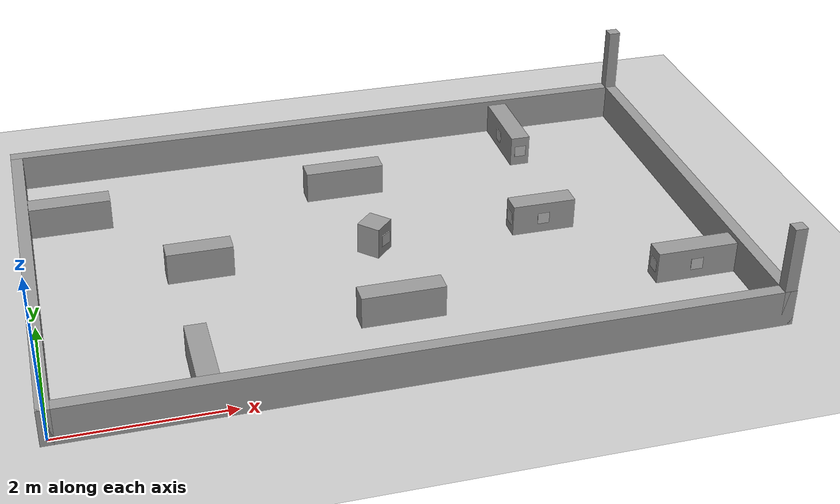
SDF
<sdf version="1.6">
 <world name="default">
  <model name="ground_plane">
   <static>1</static>
   <link name="link">
    <collision name="collision">
     <geometry><plane><normal>0 0 1</normal><size>100 100</size></plane></geometry>
     <surface><friction><ode><mu>100</mu><mu2>50</mu2></ode></friction></surface>
    </collision>
    <visual name="visual">
     <cast_shadows>0</cast_shadows>
     <geometry><plane><normal>0 0 1</normal><size>100 100</size></plane></geometry>
     <material>
      <script><uri>file://media/materials/scripts/gazebo.material</uri><name>Gazebo/Grey</name></script>
     </material>
    </visual>
   </link>
  </model>
  <model name="2020map_originsize">
   <pose>4.125 2.61211 0 0 -0 0</pose>
   <link name="Wall_0">
    <collision name="Wall_0_Collision">
     <geometry><box><size>5.4 0.15 0.46</size></box></geometry>
     <pose>0 0 0.23 0 -0 0</pose>
    </collision>
    <visual name="Wall_0_Visual">
     <pose>0 0 0.23 0 -0 0</pose>
     <geometry><box><size>5.4 0.15 0.46</size></box></geometry>
     <material>
      <script><uri>file://media/materials/scripts/gazebo.material</uri><name>Gazebo/Grey</name></script>
      <ambient>1 1 1 1</ambient>
     </material>
    </visual>
    <pose>-4.125 0 0 0 0 -1.5708</pose>
   </link>
   <link name="Wall_1">
    <collision name="Wall_1_Collision">
     <geometry><box><size>8.4 0.15 0.46</size></box></geometry>
     <pose>0 0 0.23 0 -0 0</pose>
    </collision>
    <visual name="Wall_1_Visual">
     <pose>0 0 0.23 0 -0 0</pose>
     <geometry><box><size>8.4 0.15 0.46</size></box></geometry>
     <material>
      <script><uri>file://media/materials/scripts/gazebo.material</uri><name>Gazebo/Grey</name></script>
      <ambient>1 1 1 1</ambient>
     </material>
    </visual>
    <pose>0 -2.625 0 0 -0 0</pose>
   </link>
   <link name="Wall_11">
    <collision name="Wall_11_Collision">
     <geometry><box><size>1 0.25 0.4</size></box></geometry>
     <pose>0 0 0.2 0 -0 0</pose>
    </collision>
    <visual name="Wall_11_Visual">
     <pose>0 0 0.2 0 -0 0</pose>
     <geometry><box><size>1 0.25 0.4</size></box></geometry>
     <material>
      <script><uri>file://media/materials/scripts/gazebo.material</uri><name>Gazebo/Grey</name></script>
      <ambient>1 1 1 1</ambient>
     </material>
    </visual>
    <pose>-2.425 -2.05 0 0 -0 1.5708</pose>
   </link>
   <link name="Wall_13">
    <collision name="Wall_13_Collision">
     <geometry><box><size>1 0.25 0.4</size></box></geometry>
     <pose>0 0 0.2 0 -0 0</pose>
    </collision>
    <visual name="Wall_13_Visual">
     <pose>0 0 0.2 0 -0 0</pose>
     <geometry><box><size>1 0.25 0.4</size></box></geometry>
     <material>
      <script><uri>file://media/materials/scripts/gazebo.material</uri><name>Gazebo/Grey</name></script>
      <ambient>1 1 1 1</ambient>
     </material>
    </visual>
    <pose>-0.05 1.425 0 0 -0 0</pose>
   </link>
   <link name="Wall_15">
    <collision name="Wall_15_Collision">
     <geometry><box><size>1 0.25 0.4</size></box></geometry>
     <pose>0 0 0.2 0 -0 0</pose>
    </collision>
    <visual name="Wall_15_Visual">
     <pose>0 0 0.2 0 -0 0</pose>
     <geometry><box><size>1 0.25 0.4</size></box></geometry>
     <material>
      <script><uri>file://media/materials/scripts/gazebo.material</uri><name>Gazebo/Grey</name></script>
      <ambient>1 1 1 1</ambient>
     </material>
    </visual>
    <pose>-0.05 -1.425 0 0 -0 0</pose>
   </link>
   <link name="Wall_17">
    <collision name="Wall_17_Collision">
     <geometry><box><size>0.8 0.25 0.4</size></box></geometry>
     <pose>0 0 0.2 0 -0 0</pose>
    </collision>
    <visual name="Wall_17_Visual">
     <pose>0 0 0.2 0 -0 0</pose>
     <geometry><box><size>0.8 0.25 0.4</size></box></geometry>
     <material>
      <script><uri>file://media/materials/scripts/gazebo.material</uri><name>Gazebo/Grey</name></script>
      <ambient>1 1 1 1</ambient>
     </material>
    </visual>
    <pose>-2.15 0 0 0 -0 0</pose>
   </link>
   <link name="Wall_19">
    <collision name="Wall_19_Collision">
     <geometry><box><size>0.8 0.25 0.4</size></box></geometry>
     <pose>0 0 0.2 0 -0 0</pose>
    </collision>
    <visual name="Wall_19_Visual">
     <pose>0 0 0.2 0 -0 0</pose>
     <geometry><box><size>0.8 0.25 0.4</size></box></geometry>
     <material>
      <script><uri>file://media/materials/scripts/gazebo.material</uri><name>Gazebo/Grey</name></script>
      <ambient>1 1 1 1</ambient>
     </material>
    </visual>
    <pose>2.15 0 0 0 -0 0</pose>
   </link>
   <link name="Wall_2">
    <collision name="Wall_2_Collision">
     <geometry><box><size>5.4 0.15 0.46</size></box></geometry>
     <pose>0 0 0.23 0 -0 0</pose>
    </collision>
    <visual name="Wall_2_Visual">
     <pose>0 0 0.23 0 -0 0</pose>
     <geometry><box><size>5.4 0.15 0.46</size></box></geometry>
     <material>
      <script><uri>file://media/materials/scripts/gazebo.material</uri><name>Gazebo/Grey</name></script>
      <ambient>1 1 1 1</ambient>
     </material>
    </visual>
    <pose>4.125 0 0 0 -0 1.5708</pose>
   </link>
   <link name="Wall_21">
    <collision name="Wall_21_Collision">
     <geometry><box><size>0.303364 0.3 0.4</size></box></geometry>
     <pose>0 0 0.2 0 -0 0</pose>
    </collision>
    <visual name="Wall_21_Visual">
     <pose>0 0 0.2 0 -0 0</pose>
     <geometry><box><size>0.303364 0.3 0.4</size></box></geometry>
     <material>
      <script><uri>file://media/materials/scripts/gazebo.material</uri><name>Gazebo/Grey</name></script>
      <ambient>1 1 1 1</ambient>
     </material>
    </visual>
    <pose>0.001 0.001 0 0 -0 0.785398</pose>
   </link>
   <link name="Wall_3">
    <collision name="Wall_3_Collision">
     <geometry><box><size>8.4 0.15 0.46</size></box></geometry>
     <pose>0 0 0.23 0 -0 0</pose>
    </collision>
    <visual name="Wall_3_Visual">
     <pose>0 0 0.23 0 -0 0</pose>
     <geometry><box><size>8.4 0.15 0.46</size></box></geometry>
     <material>
      <script><uri>file://media/materials/scripts/gazebo.material</uri><name>Gazebo/Grey</name></script>
      <ambient>1 1 1 1</ambient>
     </material>
    </visual>
    <pose>0 2.625 0 0 -0 3.14159</pose>
   </link>
   <link name="Wall_5">
    <collision name="Wall_5_Collision">
     <geometry><box><size>1 0.25 0.4</size></box></geometry>
     <pose>0 0 0.2 0 -0 0</pose>
    </collision>
    <visual name="Wall_5_Visual">
     <pose>0 0 0.2 0 -0 0</pose>
     <geometry><box><size>1 0.25 0.4</size></box></geometry>
     <material>
      <script><uri>file://media/materials/scripts/gazebo.material</uri><name>Gazebo/Grey</name></script>
      <ambient>1 1 1 1</ambient>
     </material>
    </visual>
    <pose>-3.55 1.425 0 0 -0 0</pose>
   </link>
   <link name="Wall_7">
    <collision name="Wall_7_Collision">
     <geometry><box><size>1 0.25 0.4</size></box></geometry>
     <pose>0 0 0.2 0 -0 0</pose>
    </collision>
    <visual name="Wall_7_Visual">
     <pose>0 0 0.2 0 -0 0</pose>
     <geometry><box><size>1 0.25 0.4</size></box></geometry>
     <material>
      <script><uri>file://media/materials/scripts/gazebo.material</uri><name>Gazebo/Grey</name></script>
      <ambient>1 1 1 1</ambient>
     </material>
    </visual>
    <pose>2.425 2.05 0 0 0 -1.5708</pose>
   </link>
   <link name="Wall_9">
    <collision name="Wall_9_Collision">
     <geometry><box><size>1 0.25 0.4</size></box></geometry>
     <pose>0 0 0.2 0 -0 0</pose>
    </collision>
    <visual name="Wall_9_Visual">
     <pose>0 0 0.2 0 -0 0</pose>
     <geometry><box><size>1 0.25 0.4</size></box></geometry>
     <material>
      <script><uri>file://media/materials/scripts/gazebo.material</uri><name>Gazebo/Grey</name></script>
      <ambient>1 1 1 1</ambient>
     </material>
    </visual>
    <pose>3.55 -1.425 0 0 -0 3.14159</pose>
   </link>
   <static>1</static>
  </model>
  <model name="visualtag_08">
   <link name="main">
    <visual name="main_Visual">
     <geometry><box><size>0.15 0.15 0.01</size></box></geometry>
     <material>
      <script>
       <uri>model://visualtag_08/materials/scripts</uri>
       <uri>model://visualtag_08/materials/textures</uri>
       <name>visualtag_08</name>
      </script>
     </material>
    </visual>
   </link>
   <static>1</static>
   <pose>4.57562 1.18958 0.2 -1.33444 1.56615 1.80715</pose>
  </model>
  <model name="visualtag_12">
   <link name="main">
    <visual name="main_Visual">
     <geometry><box><size>0.15 0.15 0.01</size></box></geometry>
     <material>
      <script>
       <uri>model://visualtag_12/materials/scripts</uri>
       <uri>model://visualtag_12/materials/textures</uri>
       <name>visualtag_12</name>
      </script>
     </material>
    </visual>
   </link>
   <static>1</static>
   <pose>4.58162 4.04042 0.2 -1.33444 1.56615 1.80715</pose>
  </model>
  <model name="visualtag_13">
   <link name="main">
    <visual name="main_Visual">
     <geometry><box><size>0.15 0.15 0.01</size></box></geometry>
     <material>
      <script>
       <uri>model://visualtag_13/materials/scripts</uri>
       <uri>model://visualtag_13/materials/textures</uri>
       <name>visualtag_13</name>
      </script>
     </material>
    </visual>
   </link>
   <static>1</static>
   <pose>6.26757 2.47881 0.2 -0.920098 1.57 0.654897</pose>
  </model>
  <model name="visualtag_14">
   <link name="main">
    <visual name="main_Visual">
     <geometry><box><size>0.15 0.15 0.01</size></box></geometry>
     <material>
      <script>
       <uri>model://visualtag_14/materials/scripts</uri>
       <uri>model://visualtag_14/materials/textures</uri>
       <name>visualtag_14</name>
      </script>
     </material>
    </visual>
   </link>
   <static>1</static>
   <pose>5.8698 2.61112 0.2 3.14159 -1.57079 3.14159</pose>
  </model>
  <model name="visualtag_15">
   <link name="main">
    <visual name="main_Visual">
     <geometry><box><size>0.15 0.15 0.01</size></box></geometry>
     <material>
      <script>
       <uri>model://visualtag_15/materials/scripts</uri>
       <uri>model://visualtag_15/materials/textures</uri>
       <name>visualtag_15</name>
      </script>
     </material>
    </visual>
   </link>
   <static>1</static>
   <pose>6.26978 2.74051 0.2 0.046953 1.56575 -1.49148</pose>
  </model>
  <model name="visualtag_16">
   <link name="main">
    <visual name="main_Visual">
     <geometry><box><size>0.15 0.15 0.01</size></box></geometry>
     <material>
      <script>
       <uri>model://visualtag_16/materials/scripts</uri>
       <uri>model://visualtag_16/materials/textures</uri>
       <name>visualtag_16</name>
      </script>
     </material>
    </visual>
   </link>
   <static>1</static>
   <pose>6.68002 2.61891 0.2 -1.33444 1.56615 1.80715</pose>
  </model>
  <model name="visualtag_20">
   <link name="main">
    <visual name="main_Visual">
     <geometry><box><size>0.15 0.15 0.01</size></box></geometry>
     <material>
      <script>
       <uri>model://visualtag_20/materials/scripts</uri>
       <uri>model://visualtag_20/materials/textures</uri>
       <name>visualtag_20</name>
      </script>
     </material>
    </visual>
   </link>
   <static>1</static>
   <pose>6.68648 4.65294 0.2 -1.33444 1.56615 1.80715</pose>
  </model>
  <model name="visualtag_21">
   <link name="main">
    <visual name="main_Visual">
     <geometry><box><size>0.15 0.15 0.01</size></box></geometry>
     <material>
      <script>
       <uri>model://visualtag_21/materials/scripts</uri>
       <uri>model://visualtag_21/materials/textures</uri>
       <name>visualtag_21</name>
      </script>
     </material>
    </visual>
   </link>
   <static>1</static>
   <pose>6.55294 4.16275 0.200003 -0.920098 1.57 0.654897</pose>
  </model>
  <model name="visualtag_22">
   <link name="main">
    <visual name="main_Visual">
     <geometry><box><size>0.15 0.15 0.01</size></box></geometry>
     <material>
      <script>
       <uri>model://visualtag_22/materials/scripts</uri>
       <uri>model://visualtag_22/materials/textures</uri>
       <name>visualtag_22</name>
      </script>
     </material>
    </visual>
   </link>
   <static>1</static>
   <pose>6.41289 4.64833 0.199993 3.14159 -1.57079 3.14159</pose>
  </model>
  <model name="visualtag_23">
   <link name="main">
    <visual name="main_Visual">
     <geometry><box><size>0.15 0.15 0.01</size></box></geometry>
     <material>
      <script>
       <uri>model://visualtag_23/materials/scripts</uri>
       <uri>model://visualtag_23/materials/textures</uri>
       <name>visualtag_23</name>
      </script>
     </material>
    </visual>
   </link>
   <static>1</static>
   <pose>7.6878 1.31718 0.2 0.046881 1.56575 -1.49155</pose>
  </model>
  <model name="visualtag_24">
   <link name="main">
    <visual name="main_Visual">
     <geometry><box><size>0.15 0.15 0.01</size></box></geometry>
     <material>
      <script>
       <uri>model://visualtag_24/materials/scripts</uri>
       <uri>model://visualtag_24/materials/textures</uri>
       <name>visualtag_24</name>
      </script>
     </material>
    </visual>
   </link>
   <static>1</static>
   <pose>7.17202 1.18411 0.2 -1.33444 1.56615 1.80715</pose>
  </model>
  <model name="visualtag_25">
   <link name="main">
    <visual name="main_Visual">
     <geometry><box><size>0.15 0.15 0.01</size></box></geometry>
     <material>
      <script>
       <uri>model://visualtag_25/materials/scripts</uri>
       <uri>model://visualtag_25/materials/textures</uri>
       <name>visualtag_25</name>
      </script>
     </material>
    </visual>
   </link>
   <static>1</static>
   <pose>7.67141 1.05707 0.2 -0.920098 1.57 0.654897</pose>
  </model>
  <model name="visualtag_31">
   <link name="main">
    <visual name="main_Visual">
     <geometry><box><size>0.15 0.15 0.01</size></box></geometry>
     <material>
      <script>
       <uri>model://visualtag_31/materials/scripts</uri>
       <uri>model://visualtag_31/materials/textures</uri>
       <name>visualtag_31</name>
      </script>
     </material>
    </visual>
   </link>
   <static>1</static>
   <pose>4.24645 2.7232 0.2 0.845258 1.56575 -1.49154</pose>
  </model>
  <model name="visualtag_32">
   <link name="main">
    <visual name="main_Visual">
     <geometry><box><size>0.15 0.15 0.01</size></box></geometry>
     <material>
      <script>
       <uri>model://visualtag_32/materials/scripts</uri>
       <uri>model://visualtag_32/materials/textures</uri>
       <name>visualtag_32</name>
      </script>
     </material>
    </visual>
   </link>
   <static>1</static>
   <pose>4.24187 2.50059 0.2 -0.4224 1.56615 1.80715</pose>
  </model>
  <model name="unit_box_clone_0">
   <pose>8.24323 5.23829 0.870686 -3e-06 -3e-06 -0.00039</pose>
   <link name="link">
    <inertial>
     <mass>1</mass>
     <inertia>
      <ixx>0.166667</ixx>
      <ixy>0</ixy>
      <ixz>0</ixz>
      <iyy>0.166667</iyy>
      <iyz>0</iyz>
      <izz>0.166667</izz>
     </inertia>
    </inertial>
    <collision name="collision">
     <geometry><box><size>0.149424 0.140999 0.821372</size></box></geometry>
    </collision>
    <visual name="visual">
     <geometry><box><size>0.149424 0.140999 0.821372</size></box></geometry>
     <material>
      <script><name>Gazebo/Grey</name><uri>file://media/materials/scripts/gazebo.material</uri></script>
     </material>
    </visual>
   </link>
  </model>
  <model name="unit_box_clone_1">
   <pose>8.24782 -0.012643 0.870677 0 -0 -0.000386</pose>
   <link name="link">
    <inertial>
     <mass>1</mass>
     <inertia>
      <ixx>0.166667</ixx>
      <ixy>0</ixy>
      <ixz>0</ixz>
      <iyy>0.166667</iyy>
      <iyz>0</iyz>
      <izz>0.166667</izz>
     </inertia>
    </inertial>
    <collision name="collision">
     <geometry><box><size>0.149424 0.140999 0.821372</size></box></geometry>
    </collision>
    <visual name="visual">
     <geometry><box><size>0.149424 0.140999 0.821372</size></box></geometry>
     <material>
      <script><name>Gazebo/Grey</name><uri>file://media/materials/scripts/gazebo.material</uri></script>
     </material>
    </visual>
   </link>
  </model>
 </world>
</sdf>
